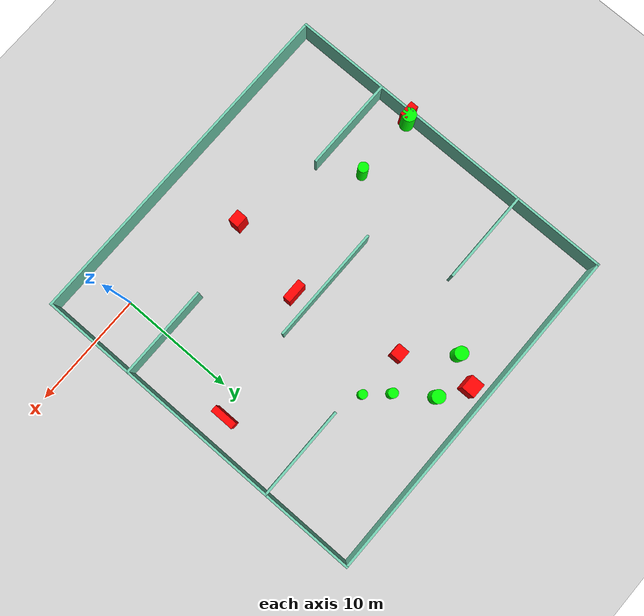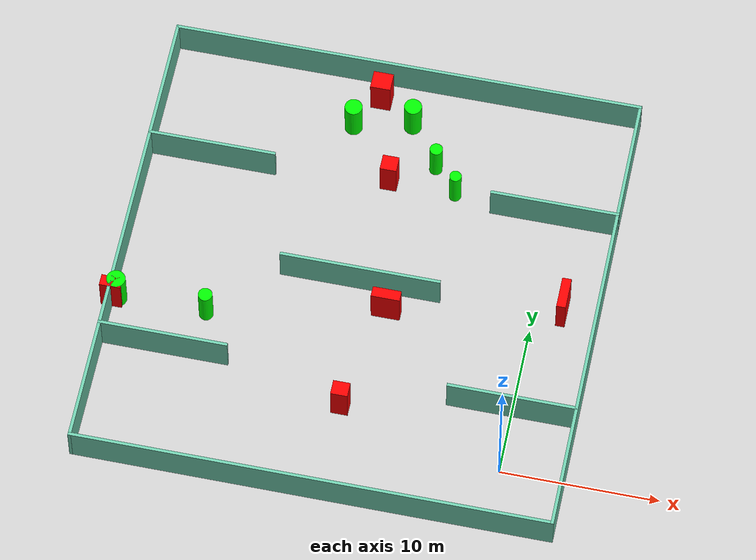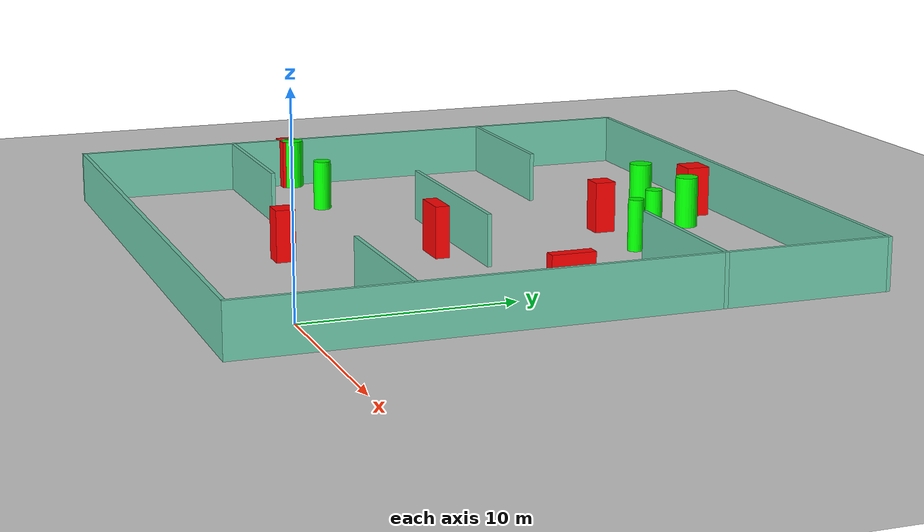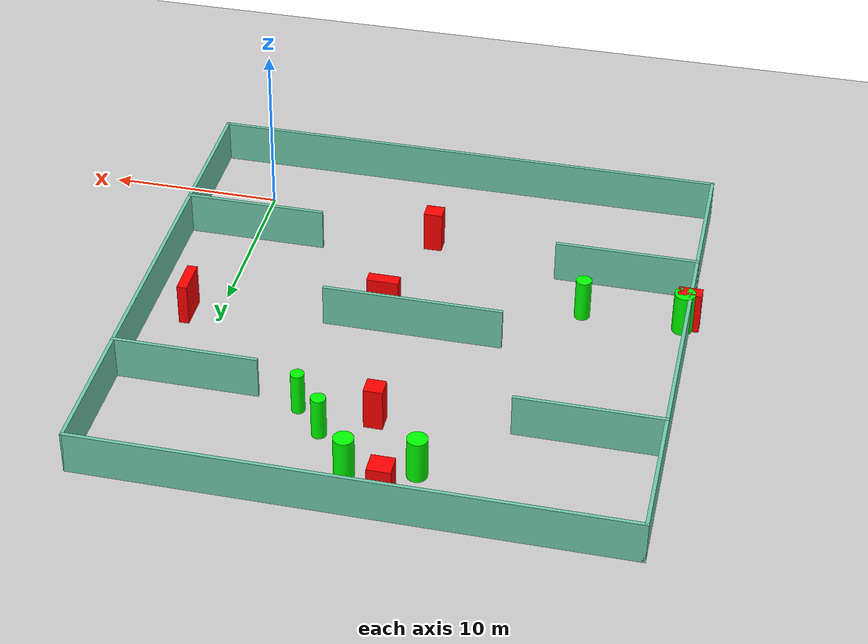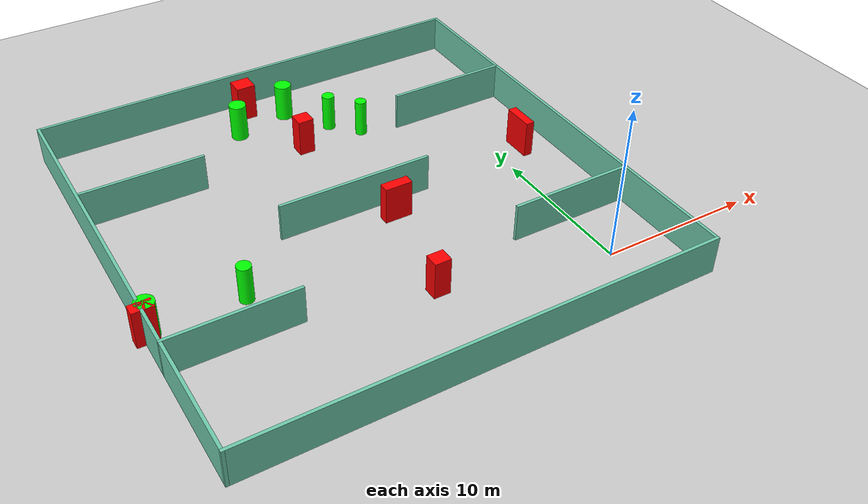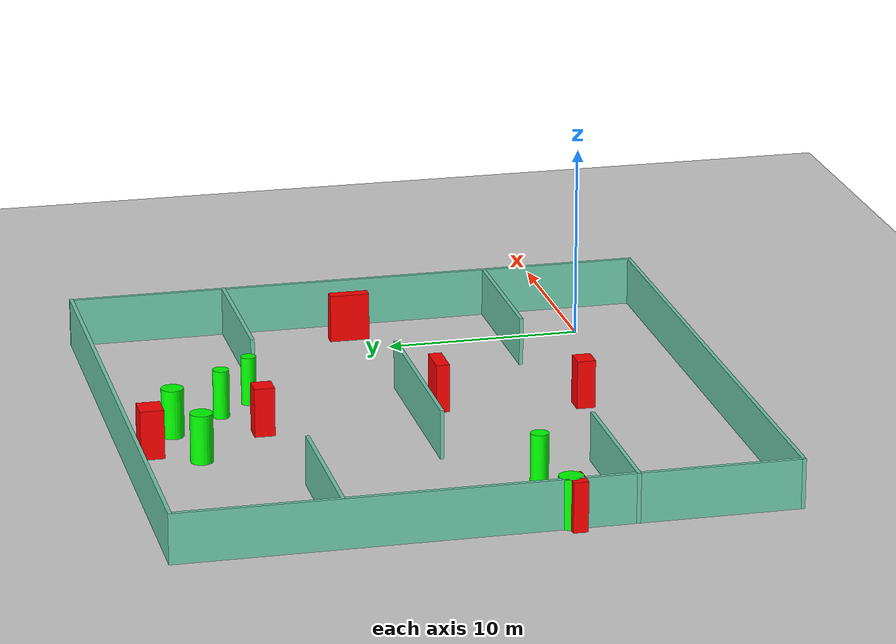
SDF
<sdf version="1.7">
 <world name="default">
  <light name="sun" type="directional">
   <pose>0 0 10 0 -0 0</pose>
   <diffuse>0.8 0.8 0.8 1</diffuse>
   <specular>0.2 0.2 0.2 1</specular>
   <attenuation>
    <range>1000</range>
    <constant>0.9</constant>
    <linear>0.01</linear>
    <quadratic>0.001</quadratic>
   </attenuation>
   <direction>-0.5 0.1 -0.9</direction>
   <spot><inner_angle>0</inner_angle><outer_angle>0</outer_angle><falloff>0</falloff></spot>
  </light>
  <model name="ground_plane">
   <static>1</static>
   <link name="link">
    <collision name="collision">
     <geometry><plane><normal>0 0 1</normal><size>100 100</size></plane></geometry>
     <surface>
      <contact><collide_bitmask>65535</collide_bitmask></contact>
      <friction><ode><mu>100</mu><mu2>50</mu2></ode></friction>
     </surface>
    </collision>
    <visual name="visual">
     <cast_shadows>0</cast_shadows>
     <geometry><plane><normal>0 0 1</normal><size>100 100</size></plane></geometry>
     <material>
      <script><uri>file://media/materials/scripts/gazebo.material</uri><name>Gazebo/Grey</name></script>
     </material>
    </visual>
   </link>
  </model>
  <gravity>0 0 -9.8</gravity>
  <magnetic_field>6e-06 2.3e-05 -4.2e-05</magnetic_field>
  <atmosphere type="adiabatic"/>
  <physics type="ode">
   <max_step_size>0.001</max_step_size>
   <real_time_factor>1</real_time_factor>
   <real_time_update_rate>1000</real_time_update_rate>
  </physics>
  <scene><ambient>0.4 0.4 0.4 1</ambient><background>0.7 0.7 0.7 1</background><shadows>1</shadows></scene>
  <spherical_coordinates>
   <surface_model>EARTH_WGS84</surface_model>
   <latitude_deg>0</latitude_deg>
   <longitude_deg>0</longitude_deg>
   <elevation>0</elevation>
   <heading_deg>0</heading_deg>
  </spherical_coordinates>
  <model name="my_base_walls">
   <link name="Wall_10">
    <collision name="Wall_10_Collision">
     <geometry><box><size>8.2 0.2 2.5</size></box></geometry>
     <pose>0 0 1.25 0 -0 0</pose>
    </collision>
    <visual name="Wall_10_Visual">
     <pose>0 0 1.25 0 -0 0</pose>
     <geometry><box><size>8.2 0.2 2.5</size></box></geometry>
     <material>
      <script><uri>file://media/materials/scripts/gazebo.material</uri><name>Gazebo/Grey</name></script>
      <ambient>0.435294 0.796078 0.67451 1</ambient>
     </material>
     <meta><layer>0</layer></meta>
    </visual>
    <pose>-11 -7 0 0 -0 0</pose>
   </link>
   <link name="Wall_12">
    <collision name="Wall_12_Collision">
     <geometry><box><size>8.2 0.2 2.5</size></box></geometry>
     <pose>0 0 1.25 0 -0 0</pose>
    </collision>
    <visual name="Wall_12_Visual">
     <pose>0 0 1.25 0 -0 0</pose>
     <geometry><box><size>8.2 0.2 2.5</size></box></geometry>
     <material>
      <script><uri>file://media/materials/scripts/gazebo.material</uri><name>Gazebo/Grey</name></script>
      <ambient>0.435294 0.796078 0.67451 1</ambient>
     </material>
     <meta><layer>0</layer></meta>
    </visual>
    <pose>-11 7 0 0 -0 0</pose>
   </link>
   <link name="Wall_14">
    <collision name="Wall_14_Collision">
     <geometry><box><size>8.2 0.2 2.5</size></box></geometry>
     <pose>0 0 1.25 0 -0 0</pose>
    </collision>
    <visual name="Wall_14_Visual">
     <pose>0 0 1.25 0 -0 0</pose>
     <geometry><box><size>8.2 0.2 2.5</size></box></geometry>
     <material>
      <script><uri>file://media/materials/scripts/gazebo.material</uri><name>Gazebo/Grey</name></script>
      <ambient>0.435294 0.796078 0.67451 1</ambient>
     </material>
     <meta><layer>0</layer></meta>
    </visual>
    <pose>11 7 0 0 -0 3.14159</pose>
   </link>
   <link name="Wall_16">
    <collision name="Wall_16_Collision">
     <geometry><box><size>10.2 0.2 2.5</size></box></geometry>
     <pose>0 0 1.25 0 -0 0</pose>
    </collision>
    <visual name="Wall_16_Visual">
     <pose>0 0 1.25 0 -0 0</pose>
     <geometry><box><size>10.2 0.2 2.5</size></box></geometry>
     <material>
      <script><uri>file://media/materials/scripts/gazebo.material</uri><name>Gazebo/Grey</name></script>
      <ambient>0.435294 0.796078 0.67451 1</ambient>
     </material>
     <meta><layer>0</layer></meta>
    </visual>
    <pose>0 0 0 0 -0 3.14159</pose>
   </link>
   <link name="Wall_2">
    <collision name="Wall_2_Collision">
     <geometry><box><size>30.2 0.2 2.5</size></box></geometry>
     <pose>0 0 1.25 0 -0 0</pose>
    </collision>
    <visual name="Wall_2_Visual">
     <pose>0 0 1.25 0 -0 0</pose>
     <geometry><box><size>30.2 0.2 2.5</size></box></geometry>
     <material>
      <script><uri>file://media/materials/scripts/gazebo.material</uri><name>Gazebo/Grey</name></script>
      <ambient>0.435294 0.796078 0.67451 1</ambient>
     </material>
     <meta><layer>0</layer></meta>
    </visual>
    <pose>0 -15 0 0 -0 3.14159</pose>
   </link>
   <link name="Wall_3">
    <collision name="Wall_3_Collision">
     <geometry><box><size>30.2 0.2 2.5</size></box></geometry>
     <pose>0 0 1.25 0 -0 0</pose>
    </collision>
    <visual name="Wall_3_Visual">
     <pose>0 0 1.25 0 -0 0</pose>
     <geometry><box><size>30.2 0.2 2.5</size></box></geometry>
     <material>
      <script><uri>file://media/materials/scripts/gazebo.material</uri><name>Gazebo/Grey</name></script>
      <ambient>0.435294 0.796078 0.67451 1</ambient>
     </material>
     <meta><layer>0</layer></meta>
    </visual>
    <pose>-15 0 0 0 -0 1.5708</pose>
   </link>
   <link name="Wall_4">
    <collision name="Wall_4_Collision">
     <geometry><box><size>30.2 0.2 2.5</size></box></geometry>
     <pose>0 0 1.25 0 -0 0</pose>
    </collision>
    <visual name="Wall_4_Visual">
     <pose>0 0 1.25 0 -0 0</pose>
     <geometry><box><size>30.2 0.2 2.5</size></box></geometry>
     <material>
      <script><uri>file://media/materials/scripts/gazebo.material</uri><name>Gazebo/Grey</name></script>
      <ambient>0.435294 0.796078 0.67451 1</ambient>
     </material>
     <meta><layer>0</layer></meta>
    </visual>
    <pose>0 15 0 0 -0 0</pose>
   </link>
   <link name="Wall_6">
    <collision name="Wall_6_Collision">
     <geometry><box><size>30.2 0.2 2.5</size></box></geometry>
     <pose>0 0 1.25 0 -0 0</pose>
    </collision>
    <visual name="Wall_6_Visual">
     <pose>0 0 1.25 0 -0 0</pose>
     <geometry><box><size>30.2 0.2 2.5</size></box></geometry>
     <material>
      <script><uri>file://media/materials/scripts/gazebo.material</uri><name>Gazebo/Grey</name></script>
      <ambient>0.435294 0.796078 0.67451 1</ambient>
     </material>
     <meta><layer>0</layer></meta>
    </visual>
    <pose>15 0 0 0 -0 1.5708</pose>
   </link>
   <link name="Wall_8">
    <collision name="Wall_8_Collision">
     <geometry><box><size>8.2 0.2 2.5</size></box></geometry>
     <pose>0 0 1.25 0 -0 0</pose>
    </collision>
    <visual name="Wall_8_Visual">
     <pose>0 0 1.25 0 -0 0</pose>
     <geometry><box><size>8.2 0.2 2.5</size></box></geometry>
     <material>
      <script><uri>file://media/materials/scripts/gazebo.material</uri><name>Gazebo/Grey</name></script>
      <ambient>0.435294 0.796078 0.67451 1</ambient>
     </material>
     <meta><layer>0</layer></meta>
    </visual>
    <pose>11 -7 0 0 -0 3.14159</pose>
   </link>
   <static>1</static>
   <pose>-11 11 0 0 -0 0</pose>
  </model>
  <model name="cylinder1">
   <static>1</static>
   <link name="link">
    <inertial>
     <mass>1</mass>
     <inertia><ixx>0.5</ixx><ixy>0</ixy><ixz>0</ixz><iyy>0.5</iyy><iyz>0</iyz><izz>1</izz></inertia>
    </inertial>
    <collision name="collision">
     <geometry><cylinder><radius>0.4130853129382746</radius><length>2.5</length></cylinder></geometry>
    </collision>
    <visual name="visual">
     <geometry><cylinder><radius>0.4130853129382746</radius><length>2.5</length></cylinder></geometry>
     <material>
      <ambient>0 1 0 1</ambient>
      <diffuse>0 1 0 1</diffuse>
      <specular>0.1 0.1 0.1 1</specular>
      <emissive>0 0 0 0</emissive>
     </material>
    </visual>
   </link>
   <pose>-8.04493781799189 20.351990920673963 1.25 0 0 0</pose>
  </model>
  <model name="cylinder2">
   <static>1</static>
   <link name="link">
    <inertial>
     <mass>1</mass>
     <inertia><ixx>0.5</ixx><ixy>0</ixy><ixz>0</ixz><iyy>0.5</iyy><iyz>0</iyz><izz>1</izz></inertia>
    </inertial>
    <collision name="collision">
     <geometry><cylinder><radius>0.5620983299658906</radius><length>2.5</length></cylinder></geometry>
    </collision>
    <visual name="visual">
     <geometry><cylinder><radius>0.5620983299658906</radius><length>2.5</length></cylinder></geometry>
     <material>
      <ambient>0 1 0 1</ambient>
      <diffuse>0 1 0 1</diffuse>
      <specular>0.1 0.1 0.1 1</specular>
      <emissive>0 0 0 0</emissive>
     </material>
    </visual>
   </link>
   <pose>-10.098971906661058 23.139376073347183 1.25 0 0 0</pose>
  </model>
  <model name="cylinder3">
   <static>1</static>
   <link name="link">
    <inertial>
     <mass>1</mass>
     <inertia><ixx>0.5</ixx><ixy>0</ixy><ixz>0</ixz><iyy>0.5</iyy><iyz>0</iyz><izz>1</izz></inertia>
    </inertial>
    <collision name="collision">
     <geometry><cylinder><radius>0.4482972399194469</radius><length>2.5</length></cylinder></geometry>
    </collision>
    <visual name="visual">
     <geometry><cylinder><radius>0.4482972399194469</radius><length>2.5</length></cylinder></geometry>
     <material>
      <ambient>0 1 0 1</ambient>
      <diffuse>0 1 0 1</diffuse>
      <specular>0.1 0.1 0.1 1</specular>
      <emissive>0 0 0 0</emissive>
     </material>
    </visual>
   </link>
   <pose>-20.00969006195531 7.17627329779109 1.25 0 0 0</pose>
  </model>
  <model name="cylinder4">
   <static>1</static>
   <link name="link">
    <inertial>
     <mass>1</mass>
     <inertia><ixx>0.5</ixx><ixy>0</ixy><ixz>0</ixz><iyy>0.5</iyy><iyz>0</iyz><izz>1</izz></inertia>
    </inertial>
    <collision name="collision">
     <geometry><cylinder><radius>0.3784620771266835</radius><length>2.5</length></cylinder></geometry>
    </collision>
    <visual name="visual">
     <geometry><cylinder><radius>0.3784620771266835</radius><length>2.5</length></cylinder></geometry>
     <material>
      <ambient>0 1 0 1</ambient>
      <diffuse>0 1 0 1</diffuse>
      <specular>0.1 0.1 0.1 1</specular>
      <emissive>0 0 0 0</emissive>
     </material>
    </visual>
   </link>
   <pose>-6.471039315486877 18.665736921808687 1.25 0 0 0</pose>
  </model>
  <model name="cylinder5">
   <static>1</static>
   <link name="link">
    <inertial>
     <mass>1</mass>
     <inertia><ixx>0.5</ixx><ixy>0</ixy><ixz>0</ixz><iyy>0.5</iyy><iyz>0</iyz><izz>1</izz></inertia>
    </inertial>
    <collision name="collision">
     <geometry><cylinder><radius>0.5970521905078952</radius><length>2.5</length></cylinder></geometry>
    </collision>
    <visual name="visual">
     <geometry><cylinder><radius>0.5970521905078952</radius><length>2.5</length></cylinder></geometry>
     <material>
      <ambient>0 1 0 1</ambient>
      <diffuse>0 1 0 1</diffuse>
      <specular>0.1 0.1 0.1 1</specular>
      <emissive>0 0 0 0</emissive>
     </material>
    </visual>
   </link>
   <pose>-25.68233457775454 7.153395741539871 1.25 0 0 0</pose>
  </model>
  <model name="cylinder6">
   <static>1</static>
   <link name="link">
    <inertial>
     <mass>1</mass>
     <inertia><ixx>0.5</ixx><ixy>0</ixy><ixz>0</ixz><iyy>0.5</iyy><iyz>0</iyz><izz>1</izz></inertia>
    </inertial>
    <collision name="collision">
     <geometry><cylinder><radius>0.565817789723126</radius><length>2.5</length></cylinder></geometry>
    </collision>
    <visual name="visual">
     <geometry><cylinder><radius>0.565817789723126</radius><length>2.5</length></cylinder></geometry>
     <material>
      <ambient>0 1 0 1</ambient>
      <diffuse>0 1 0 1</diffuse>
      <specular>0.1 0.1 0.1 1</specular>
      <emissive>0 0 0 0</emissive>
     </material>
    </visual>
   </link>
   <pose>-13.782805951203908 22.35466560058684 1.25 0 0 0</pose>
  </model>
  <model name="box1">
   <static>1</static>
   <link name="link">
    <inertial>
     <mass>1</mass>
     <inertia><ixx>0.083</ixx><ixy>0</ixy><ixz>0</ixz><iyy>0.083</iyy><iyz>0</iyz><izz>0.083</izz></inertia>
    </inertial>
    <collision name="collision">
     <geometry><box><size>1.0686067335568161 0.93959157344244 2.5</size></box></geometry>
    </collision>
    <visual name="visual">
     <geometry><box><size>1.0686067335568161 0.93959157344244 2.5</size></box></geometry>
     <material>
      <ambient>1 0 0 1</ambient>
      <diffuse>1 0 0 1</diffuse>
      <specular>0.1 0.1 0.1 1</specular>
      <emissive>0 0 0 0</emissive>
     </material>
    </visual>
    <sensor name="my_contact" type="contact">
     <contact><collision>box_collision</collision><topic>__default_topic__</topic></contact>
    </sensor>
   </link>
   <pose>-10.444457720401637 2.407574557149996 1.25 0 0 0</pose>
  </model>
  <model name="box2">
   <static>1</static>
   <link name="link">
    <inertial>
     <mass>1</mass>
     <inertia><ixx>0.083</ixx><ixy>0</ixy><ixz>0</ixz><iyy>0.083</iyy><iyz>0</iyz><izz>0.083</izz></inertia>
    </inertial>
    <collision name="collision">
     <geometry><box><size>1.289854676188741 1.1855605769171027 2.5</size></box></geometry>
    </collision>
    <visual name="visual">
     <geometry><box><size>1.289854676188741 1.1855605769171027 2.5</size></box></geometry>
     <material>
      <ambient>1 0 0 1</ambient>
      <diffuse>1 0 0 1</diffuse>
      <specular>0.1 0.1 0.1 1</specular>
      <emissive>0 0 0 0</emissive>
     </material>
    </visual>
    <sensor name="my_contact" type="contact">
     <contact><collision>box_collision</collision><topic>__default_topic__</topic></contact>
    </sensor>
   </link>
   <pose>-12.408221660376707 24.627636937354872 1.25 0 0 0</pose>
  </model>
  <model name="box3">
   <static>1</static>
   <link name="link">
    <inertial>
     <mass>1</mass>
     <inertia><ixx>0.083</ixx><ixy>0</ixy><ixz>0</ixz><iyy>0.083</iyy><iyz>0</iyz><izz>0.083</izz></inertia>
    </inertial>
    <collision name="collision">
     <geometry><box><size>1.3401634156099234 0.7259367048188118 2.5</size></box></geometry>
    </collision>
    <visual name="visual">
     <geometry><box><size>1.3401634156099234 0.7259367048188118 2.5</size></box></geometry>
     <material>
      <ambient>1 0 0 1</ambient>
      <diffuse>1 0 0 1</diffuse>
      <specular>0.1 0.1 0.1 1</specular>
      <emissive>0 0 0 0</emissive>
     </material>
    </visual>
    <sensor name="my_contact" type="contact">
     <contact><collision>box_collision</collision><topic>__default_topic__</topic></contact>
    </sensor>
   </link>
   <pose>-25.94678773090684 6.913376153362687 1.25 0 0 0</pose>
  </model>
  <model name="box4">
   <static>1</static>
   <link name="link">
    <inertial>
     <mass>1</mass>
     <inertia><ixx>0.083</ixx><ixy>0</ixy><ixz>0</ixz><iyy>0.083</iyy><iyz>0</iyz><izz>0.083</izz></inertia>
    </inertial>
    <collision name="collision">
     <geometry><box><size>1.8166436889099915 0.6850052033499416 2.5</size></box></geometry>
    </collision>
    <visual name="visual">
     <geometry><box><size>1.8166436889099915 0.6850052033499416 2.5</size></box></geometry>
     <material>
      <ambient>1 0 0 1</ambient>
      <diffuse>1 0 0 1</diffuse>
      <specular>0.1 0.1 0.1 1</specular>
      <emissive>0 0 0 0</emissive>
     </material>
    </visual>
    <sensor name="my_contact" type="contact">
     <contact><collision>box_collision</collision><topic>__default_topic__</topic></contact>
    </sensor>
   </link>
   <pose>-9.02813085041852 9.500716375453802 1.25 0 0 0</pose>
  </model>
  <model name="box5">
   <static>1</static>
   <link name="link">
    <inertial>
     <mass>1</mass>
     <inertia><ixx>0.083</ixx><ixy>0</ixy><ixz>0</ixz><iyy>0.083</iyy><iyz>0</iyz><izz>0.083</izz></inertia>
    </inertial>
    <collision name="collision">
     <geometry><box><size>1.0538831408142297 1.0251405692578923 2.5</size></box></geometry>
    </collision>
    <visual name="visual">
     <geometry><box><size>1.0538831408142297 1.0251405692578923 2.5</size></box></geometry>
     <material>
      <ambient>1 0 0 1</ambient>
      <diffuse>1 0 0 1</diffuse>
      <specular>0.1 0.1 0.1 1</specular>
      <emissive>0 0 0 0</emissive>
     </material>
    </visual>
    <sensor name="my_contact" type="contact">
     <contact><collision>box_collision</collision><topic>__default_topic__</topic></contact>
    </sensor>
   </link>
   <pose>-10.716039043475023 18.76590052765225 1.25 0 0 0</pose>
  </model>
  <model name="box6">
   <static>1</static>
   <link name="link">
    <inertial>
     <mass>1</mass>
     <inertia><ixx>0.083</ixx><ixy>0</ixy><ixz>0</ixz><iyy>0.083</iyy><iyz>0</iyz><izz>0.083</izz></inertia>
    </inertial>
    <collision name="collision">
     <geometry><box><size>0.5821684932802544 2.056397650863431 2.5</size></box></geometry>
    </collision>
    <visual name="visual">
     <geometry><box><size>0.5821684932802544 2.056397650863431 2.5</size></box></geometry>
     <material>
      <ambient>1 0 0 1</ambient>
      <diffuse>1 0 0 1</diffuse>
      <specular>0.1 0.1 0.1 1</specular>
      <emissive>0 0 0 0</emissive>
     </material>
    </visual>
    <sensor name="my_contact" type="contact">
     <contact><collision>box_collision</collision><topic>__default_topic__</topic></contact>
    </sensor>
   </link>
   <pose>1.751119439943917 11.791631438451983 1.25 0 0 0</pose>
  </model>
 </world>
</sdf>
